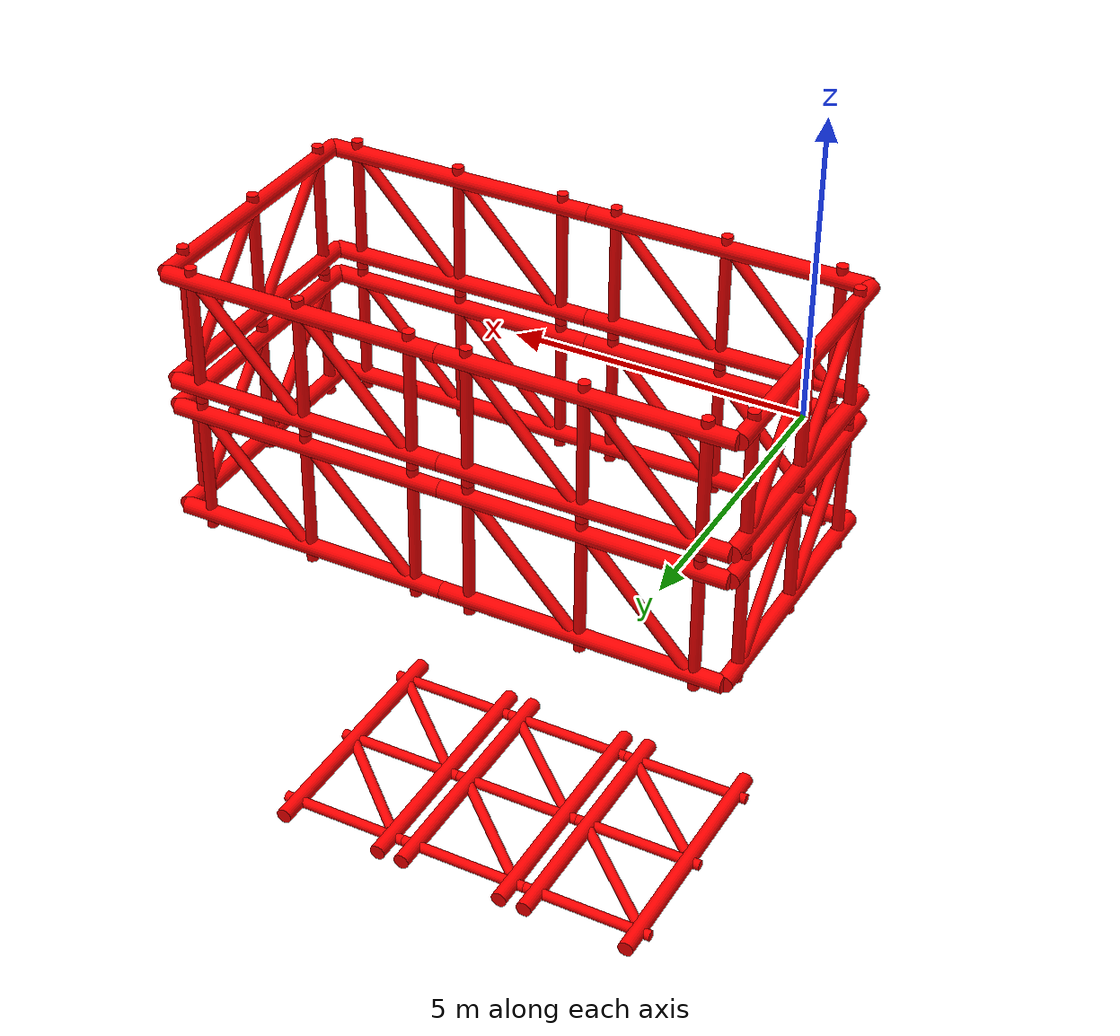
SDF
<sdf version="1.5">
 <model name="mega_structure">
  <static>true</static>
  <pose>5 0 0 0 0 0</pose>
  <link name="simple_structure::structure_body_01">
   <visual name="visual01">
    <geometry><cylinder><length>2.5</length><radius>0.1</radius></cylinder></geometry>
    <material><ambient>1 0 0 1</ambient><diffuse>1 0 0 1</diffuse><specular>0 0 0 0</specular></material>
   </visual>
   <collision name="collision01">
    <geometry><cylinder><length>2.5</length><radius>0.1</radius></cylinder></geometry>
   </collision>
   <visual name="visual02">
    <pose>0 -2 0 0 -0 0</pose>
    <geometry><cylinder><length>2.5</length><radius>0.1</radius></cylinder></geometry>
    <material><ambient>1 0 0 1</ambient><diffuse>1 0 0 1</diffuse><specular>0 0 0 0</specular></material>
   </visual>
   <collision name="collision02">
    <pose>0 -2 0 0 -0 0</pose>
    <geometry><cylinder><length>2.5</length><radius>0.1</radius></cylinder></geometry>
   </collision>
   <visual name="visual03">
    <pose>0 2 0 0 -0 0</pose>
    <geometry><cylinder><length>2.5</length><radius>0.1</radius></cylinder></geometry>
    <material><ambient>1 0 0 1</ambient><diffuse>1 0 0 1</diffuse><specular>0 0 0 0</specular></material>
   </visual>
   <collision name="collision03">
    <pose>0 2 0 0 -0 0</pose>
    <geometry><cylinder><length>2.5</length><radius>0.1</radius></cylinder></geometry>
   </collision>
   <visual name="visual04">
    <pose>0 1 0 0.75 -0 0</pose>
    <geometry><cylinder><length>2.5</length><radius>0.1</radius></cylinder></geometry>
    <material><ambient>1 0 0 1</ambient><diffuse>1 0 0 1</diffuse><specular>0 0 0 0</specular></material>
   </visual>
   <collision name="collision04">
    <pose>0 1 0 0.75 -0 0</pose>
    <geometry><cylinder><length>2.5</length><radius>0.1</radius></cylinder></geometry>
   </collision>
   <visual name="visual05">
    <pose>0 -1 0 0.75 -0 0</pose>
    <geometry><cylinder><length>2.5</length><radius>0.1</radius></cylinder></geometry>
    <material><ambient>1 0 0 1</ambient><diffuse>1 0 0 1</diffuse><specular>0 0 0 0</specular></material>
   </visual>
   <collision name="collision05">
    <pose>0 -1 0 0.75 -0 0</pose>
    <geometry><cylinder><length>2.5</length><radius>0.1</radius></cylinder></geometry>
   </collision>
   <visual name="visual06">
    <pose>0 0 1 1.5707 -0 0</pose>
    <geometry><cylinder><length>5</length><radius>0.15</radius></cylinder></geometry>
    <material><ambient>1 0 0 1</ambient><diffuse>1 0 0 1</diffuse><specular>0 0 0 0</specular></material>
   </visual>
   <collision name="collision06">
    <pose>0 0 1 1.5707 -0 0</pose>
    <geometry><cylinder><length>2.5</length><radius>0.1</radius></cylinder></geometry>
   </collision>
   <visual name="visual07">
    <pose>0 0 -1 1.5707 -0 0</pose>
    <geometry><cylinder><length>5</length><radius>0.15</radius></cylinder></geometry>
    <material><ambient>1 0 0 1</ambient><diffuse>1 0 0 1</diffuse><specular>0 0 0 0</specular></material>
   </visual>
   <collision name="collision07">
    <pose>0 0 -1 1.5707 -0 0</pose>
    <geometry><cylinder><length>2.5</length><radius>0.1</radius></cylinder></geometry>
   </collision>
   <velocity_decay><linear>0</linear><angular>0</angular></velocity_decay>
   <pose>5 0 0 0 -0 0</pose>
  </link>
  <static>true</static>
  <link name="simple_structure::structure_body_02">
   <visual name="visual01">
    <geometry><cylinder><length>2.5</length><radius>0.1</radius></cylinder></geometry>
    <material><ambient>1 0 0 1</ambient><diffuse>1 0 0 1</diffuse><specular>0 0 0 0</specular></material>
   </visual>
   <collision name="collision01">
    <geometry><cylinder><length>2.5</length><radius>0.1</radius></cylinder></geometry>
   </collision>
   <visual name="visual02">
    <pose>0 -2 0 0 -0 0</pose>
    <geometry><cylinder><length>2.5</length><radius>0.1</radius></cylinder></geometry>
    <material><ambient>1 0 0 1</ambient><diffuse>1 0 0 1</diffuse><specular>0 0 0 0</specular></material>
   </visual>
   <collision name="collision02">
    <pose>0 -2 0 0 -0 0</pose>
    <geometry><cylinder><length>2.5</length><radius>0.1</radius></cylinder></geometry>
   </collision>
   <visual name="visual03">
    <pose>0 2 0 0 -0 0</pose>
    <geometry><cylinder><length>2.5</length><radius>0.1</radius></cylinder></geometry>
    <material><ambient>1 0 0 1</ambient><diffuse>1 0 0 1</diffuse><specular>0 0 0 0</specular></material>
   </visual>
   <collision name="collision03">
    <pose>0 2 0 0 -0 0</pose>
    <geometry><cylinder><length>2.5</length><radius>0.1</radius></cylinder></geometry>
   </collision>
   <visual name="visual04">
    <pose>0 1 0 0.75 -0 0</pose>
    <geometry><cylinder><length>2.5</length><radius>0.1</radius></cylinder></geometry>
    <material><ambient>1 0 0 1</ambient><diffuse>1 0 0 1</diffuse><specular>0 0 0 0</specular></material>
   </visual>
   <collision name="collision04">
    <pose>0 1 0 0.75 -0 0</pose>
    <geometry><cylinder><length>2.5</length><radius>0.1</radius></cylinder></geometry>
   </collision>
   <visual name="visual05">
    <pose>0 -1 0 0.75 -0 0</pose>
    <geometry><cylinder><length>2.5</length><radius>0.1</radius></cylinder></geometry>
    <material><ambient>1 0 0 1</ambient><diffuse>1 0 0 1</diffuse><specular>0 0 0 0</specular></material>
   </visual>
   <collision name="collision05">
    <pose>0 -1 0 0.75 -0 0</pose>
    <geometry><cylinder><length>2.5</length><radius>0.1</radius></cylinder></geometry>
   </collision>
   <visual name="visual06">
    <pose>0 0 1 1.5707 -0 0</pose>
    <geometry><cylinder><length>5</length><radius>0.15</radius></cylinder></geometry>
    <material><ambient>1 0 0 1</ambient><diffuse>1 0 0 1</diffuse><specular>0 0 0 0</specular></material>
   </visual>
   <collision name="collision06">
    <pose>0 0 1 1.5707 -0 0</pose>
    <geometry><cylinder><length>2.5</length><radius>0.1</radius></cylinder></geometry>
   </collision>
   <visual name="visual07">
    <pose>0 0 -1 1.5707 -0 0</pose>
    <geometry><cylinder><length>5</length><radius>0.15</radius></cylinder></geometry>
    <material><ambient>1 0 0 1</ambient><diffuse>1 0 0 1</diffuse><specular>0 0 0 0</specular></material>
   </visual>
   <collision name="collision07">
    <pose>0 0 -1 1.5707 -0 0</pose>
    <geometry><cylinder><length>2.5</length><radius>0.1</radius></cylinder></geometry>
   </collision>
   <velocity_decay><linear>0</linear><angular>0</angular></velocity_decay>
   <pose>-5 0 0 0 -0 0</pose>
  </link>
  <static>true</static>
  <link name="simple_structure::structure_body_03">
   <visual name="visual01">
    <geometry><cylinder><length>2.5</length><radius>0.1</radius></cylinder></geometry>
    <material><ambient>1 0 0 1</ambient><diffuse>1 0 0 1</diffuse><specular>0 0 0 0</specular></material>
   </visual>
   <collision name="collision01">
    <geometry><cylinder><length>2.5</length><radius>0.1</radius></cylinder></geometry>
   </collision>
   <visual name="visual02">
    <pose>0 -2 0 0 -0 0</pose>
    <geometry><cylinder><length>2.5</length><radius>0.1</radius></cylinder></geometry>
    <material><ambient>1 0 0 1</ambient><diffuse>1 0 0 1</diffuse><specular>0 0 0 0</specular></material>
   </visual>
   <collision name="collision02">
    <pose>0 -2 0 0 -0 0</pose>
    <geometry><cylinder><length>2.5</length><radius>0.1</radius></cylinder></geometry>
   </collision>
   <visual name="visual03">
    <pose>0 2 0 0 -0 0</pose>
    <geometry><cylinder><length>2.5</length><radius>0.1</radius></cylinder></geometry>
    <material><ambient>1 0 0 1</ambient><diffuse>1 0 0 1</diffuse><specular>0 0 0 0</specular></material>
   </visual>
   <collision name="collision03">
    <pose>0 2 0 0 -0 0</pose>
    <geometry><cylinder><length>2.5</length><radius>0.1</radius></cylinder></geometry>
   </collision>
   <visual name="visual04">
    <pose>0 1 0 0.75 -0 0</pose>
    <geometry><cylinder><length>2.5</length><radius>0.1</radius></cylinder></geometry>
    <material><ambient>1 0 0 1</ambient><diffuse>1 0 0 1</diffuse><specular>0 0 0 0</specular></material>
   </visual>
   <collision name="collision04">
    <pose>0 1 0 0.75 -0 0</pose>
    <geometry><cylinder><length>2.5</length><radius>0.1</radius></cylinder></geometry>
   </collision>
   <visual name="visual05">
    <pose>0 -1 0 0.75 -0 0</pose>
    <geometry><cylinder><length>2.5</length><radius>0.1</radius></cylinder></geometry>
    <material><ambient>1 0 0 1</ambient><diffuse>1 0 0 1</diffuse><specular>0 0 0 0</specular></material>
   </visual>
   <collision name="collision05">
    <pose>0 -1 0 0.75 -0 0</pose>
    <geometry><cylinder><length>2.5</length><radius>0.1</radius></cylinder></geometry>
   </collision>
   <visual name="visual06">
    <pose>0 0 1 1.5707 -0 0</pose>
    <geometry><cylinder><length>5</length><radius>0.15</radius></cylinder></geometry>
    <material><ambient>1 0 0 1</ambient><diffuse>1 0 0 1</diffuse><specular>0 0 0 0</specular></material>
   </visual>
   <collision name="collision06">
    <pose>0 0 1 1.5707 -0 0</pose>
    <geometry><cylinder><length>2.5</length><radius>0.1</radius></cylinder></geometry>
   </collision>
   <visual name="visual07">
    <pose>0 0 -1 1.5707 -0 0</pose>
    <geometry><cylinder><length>5</length><radius>0.15</radius></cylinder></geometry>
    <material><ambient>1 0 0 1</ambient><diffuse>1 0 0 1</diffuse><specular>0 0 0 0</specular></material>
   </visual>
   <collision name="collision07">
    <pose>0 0 -1 1.5707 -0 0</pose>
    <geometry><cylinder><length>2.5</length><radius>0.1</radius></cylinder></geometry>
   </collision>
   <velocity_decay><linear>0</linear><angular>0</angular></velocity_decay>
   <pose>2.5 2.5 0 0 -0 1.5707</pose>
  </link>
  <static>true</static>
  <link name="simple_structure::structure_body_04">
   <visual name="visual01">
    <geometry><cylinder><length>2.5</length><radius>0.1</radius></cylinder></geometry>
    <material><ambient>1 0 0 1</ambient><diffuse>1 0 0 1</diffuse><specular>0 0 0 0</specular></material>
   </visual>
   <collision name="collision01">
    <geometry><cylinder><length>2.5</length><radius>0.1</radius></cylinder></geometry>
   </collision>
   <visual name="visual02">
    <pose>0 -2 0 0 -0 0</pose>
    <geometry><cylinder><length>2.5</length><radius>0.1</radius></cylinder></geometry>
    <material><ambient>1 0 0 1</ambient><diffuse>1 0 0 1</diffuse><specular>0 0 0 0</specular></material>
   </visual>
   <collision name="collision02">
    <pose>0 -2 0 0 -0 0</pose>
    <geometry><cylinder><length>2.5</length><radius>0.1</radius></cylinder></geometry>
   </collision>
   <visual name="visual03">
    <pose>0 2 0 0 -0 0</pose>
    <geometry><cylinder><length>2.5</length><radius>0.1</radius></cylinder></geometry>
    <material><ambient>1 0 0 1</ambient><diffuse>1 0 0 1</diffuse><specular>0 0 0 0</specular></material>
   </visual>
   <collision name="collision03">
    <pose>0 2 0 0 -0 0</pose>
    <geometry><cylinder><length>2.5</length><radius>0.1</radius></cylinder></geometry>
   </collision>
   <visual name="visual04">
    <pose>0 1 0 0.75 -0 0</pose>
    <geometry><cylinder><length>2.5</length><radius>0.1</radius></cylinder></geometry>
    <material><ambient>1 0 0 1</ambient><diffuse>1 0 0 1</diffuse><specular>0 0 0 0</specular></material>
   </visual>
   <collision name="collision04">
    <pose>0 1 0 0.75 -0 0</pose>
    <geometry><cylinder><length>2.5</length><radius>0.1</radius></cylinder></geometry>
   </collision>
   <visual name="visual05">
    <pose>0 -1 0 0.75 -0 0</pose>
    <geometry><cylinder><length>2.5</length><radius>0.1</radius></cylinder></geometry>
    <material><ambient>1 0 0 1</ambient><diffuse>1 0 0 1</diffuse><specular>0 0 0 0</specular></material>
   </visual>
   <collision name="collision05">
    <pose>0 -1 0 0.75 -0 0</pose>
    <geometry><cylinder><length>2.5</length><radius>0.1</radius></cylinder></geometry>
   </collision>
   <visual name="visual06">
    <pose>0 0 1 1.5707 -0 0</pose>
    <geometry><cylinder><length>5</length><radius>0.15</radius></cylinder></geometry>
    <material><ambient>1 0 0 1</ambient><diffuse>1 0 0 1</diffuse><specular>0 0 0 0</specular></material>
   </visual>
   <collision name="collision06">
    <pose>0 0 1 1.5707 -0 0</pose>
    <geometry><cylinder><length>2.5</length><radius>0.1</radius></cylinder></geometry>
   </collision>
   <visual name="visual07">
    <pose>0 0 -1 1.5707 -0 0</pose>
    <geometry><cylinder><length>5</length><radius>0.15</radius></cylinder></geometry>
    <material><ambient>1 0 0 1</ambient><diffuse>1 0 0 1</diffuse><specular>0 0 0 0</specular></material>
   </visual>
   <collision name="collision07">
    <pose>0 0 -1 1.5707 -0 0</pose>
    <geometry><cylinder><length>2.5</length><radius>0.1</radius></cylinder></geometry>
   </collision>
   <velocity_decay><linear>0</linear><angular>0</angular></velocity_decay>
   <pose>-2.5 2.5 0 0 -0 1.5707</pose>
  </link>
  <static>true</static>
  <link name="simple_structure::structure_body_05">
   <visual name="visual01">
    <geometry><cylinder><length>2.5</length><radius>0.1</radius></cylinder></geometry>
    <material><ambient>1 0 0 1</ambient><diffuse>1 0 0 1</diffuse><specular>0 0 0 0</specular></material>
   </visual>
   <collision name="collision01">
    <geometry><cylinder><length>2.5</length><radius>0.1</radius></cylinder></geometry>
   </collision>
   <visual name="visual02">
    <pose>0 -2 0 0 -0 0</pose>
    <geometry><cylinder><length>2.5</length><radius>0.1</radius></cylinder></geometry>
    <material><ambient>1 0 0 1</ambient><diffuse>1 0 0 1</diffuse><specular>0 0 0 0</specular></material>
   </visual>
   <collision name="collision02">
    <pose>0 -2 0 0 -0 0</pose>
    <geometry><cylinder><length>2.5</length><radius>0.1</radius></cylinder></geometry>
   </collision>
   <visual name="visual03">
    <pose>0 2 0 0 -0 0</pose>
    <geometry><cylinder><length>2.5</length><radius>0.1</radius></cylinder></geometry>
    <material><ambient>1 0 0 1</ambient><diffuse>1 0 0 1</diffuse><specular>0 0 0 0</specular></material>
   </visual>
   <collision name="collision03">
    <pose>0 2 0 0 -0 0</pose>
    <geometry><cylinder><length>2.5</length><radius>0.1</radius></cylinder></geometry>
   </collision>
   <visual name="visual04">
    <pose>0 1 0 0.75 -0 0</pose>
    <geometry><cylinder><length>2.5</length><radius>0.1</radius></cylinder></geometry>
    <material><ambient>1 0 0 1</ambient><diffuse>1 0 0 1</diffuse><specular>0 0 0 0</specular></material>
   </visual>
   <collision name="collision04">
    <pose>0 1 0 0.75 -0 0</pose>
    <geometry><cylinder><length>2.5</length><radius>0.1</radius></cylinder></geometry>
   </collision>
   <visual name="visual05">
    <pose>0 -1 0 0.75 -0 0</pose>
    <geometry><cylinder><length>2.5</length><radius>0.1</radius></cylinder></geometry>
    <material><ambient>1 0 0 1</ambient><diffuse>1 0 0 1</diffuse><specular>0 0 0 0</specular></material>
   </visual>
   <collision name="collision05">
    <pose>0 -1 0 0.75 -0 0</pose>
    <geometry><cylinder><length>2.5</length><radius>0.1</radius></cylinder></geometry>
   </collision>
   <visual name="visual06">
    <pose>0 0 1 1.5707 -0 0</pose>
    <geometry><cylinder><length>5</length><radius>0.15</radius></cylinder></geometry>
    <material><ambient>1 0 0 1</ambient><diffuse>1 0 0 1</diffuse><specular>0 0 0 0</specular></material>
   </visual>
   <collision name="collision06">
    <pose>0 0 1 1.5707 -0 0</pose>
    <geometry><cylinder><length>2.5</length><radius>0.1</radius></cylinder></geometry>
   </collision>
   <visual name="visual07">
    <pose>0 0 -1 1.5707 -0 0</pose>
    <geometry><cylinder><length>5</length><radius>0.15</radius></cylinder></geometry>
    <material><ambient>1 0 0 1</ambient><diffuse>1 0 0 1</diffuse><specular>0 0 0 0</specular></material>
   </visual>
   <collision name="collision07">
    <pose>0 0 -1 1.5707 -0 0</pose>
    <geometry><cylinder><length>2.5</length><radius>0.1</radius></cylinder></geometry>
   </collision>
   <velocity_decay><linear>0</linear><angular>0</angular></velocity_decay>
   <pose>2.5 -2.5 0 0 -0 1.5707</pose>
  </link>
  <static>true</static>
  <link name="simple_structure::structure_body_06">
   <visual name="visual01">
    <geometry><cylinder><length>2.5</length><radius>0.1</radius></cylinder></geometry>
    <material><ambient>1 0 0 1</ambient><diffuse>1 0 0 1</diffuse><specular>0 0 0 0</specular></material>
   </visual>
   <collision name="collision01">
    <geometry><cylinder><length>2.5</length><radius>0.1</radius></cylinder></geometry>
   </collision>
   <visual name="visual02">
    <pose>0 -2 0 0 -0 0</pose>
    <geometry><cylinder><length>2.5</length><radius>0.1</radius></cylinder></geometry>
    <material><ambient>1 0 0 1</ambient><diffuse>1 0 0 1</diffuse><specular>0 0 0 0</specular></material>
   </visual>
   <collision name="collision02">
    <pose>0 -2 0 0 -0 0</pose>
    <geometry><cylinder><length>2.5</length><radius>0.1</radius></cylinder></geometry>
   </collision>
   <visual name="visual03">
    <pose>0 2 0 0 -0 0</pose>
    <geometry><cylinder><length>2.5</length><radius>0.1</radius></cylinder></geometry>
    <material><ambient>1 0 0 1</ambient><diffuse>1 0 0 1</diffuse><specular>0 0 0 0</specular></material>
   </visual>
   <collision name="collision03">
    <pose>0 2 0 0 -0 0</pose>
    <geometry><cylinder><length>2.5</length><radius>0.1</radius></cylinder></geometry>
   </collision>
   <visual name="visual04">
    <pose>0 1 0 0.75 -0 0</pose>
    <geometry><cylinder><length>2.5</length><radius>0.1</radius></cylinder></geometry>
    <material><ambient>1 0 0 1</ambient><diffuse>1 0 0 1</diffuse><specular>0 0 0 0</specular></material>
   </visual>
   <collision name="collision04">
    <pose>0 1 0 0.75 -0 0</pose>
    <geometry><cylinder><length>2.5</length><radius>0.1</radius></cylinder></geometry>
   </collision>
   <visual name="visual05">
    <pose>0 -1 0 0.75 -0 0</pose>
    <geometry><cylinder><length>2.5</length><radius>0.1</radius></cylinder></geometry>
    <material><ambient>1 0 0 1</ambient><diffuse>1 0 0 1</diffuse><specular>0 0 0 0</specular></material>
   </visual>
   <collision name="collision05">
    <pose>0 -1 0 0.75 -0 0</pose>
    <geometry><cylinder><length>2.5</length><radius>0.1</radius></cylinder></geometry>
   </collision>
   <visual name="visual06">
    <pose>0 0 1 1.5707 -0 0</pose>
    <geometry><cylinder><length>5</length><radius>0.15</radius></cylinder></geometry>
    <material><ambient>1 0 0 1</ambient><diffuse>1 0 0 1</diffuse><specular>0 0 0 0</specular></material>
   </visual>
   <collision name="collision06">
    <pose>0 0 1 1.5707 -0 0</pose>
    <geometry><cylinder><length>2.5</length><radius>0.1</radius></cylinder></geometry>
   </collision>
   <visual name="visual07">
    <pose>0 0 -1 1.5707 -0 0</pose>
    <geometry><cylinder><length>5</length><radius>0.15</radius></cylinder></geometry>
    <material><ambient>1 0 0 1</ambient><diffuse>1 0 0 1</diffuse><specular>0 0 0 0</specular></material>
   </visual>
   <collision name="collision07">
    <pose>0 0 -1 1.5707 -0 0</pose>
    <geometry><cylinder><length>2.5</length><radius>0.1</radius></cylinder></geometry>
   </collision>
   <velocity_decay><linear>0</linear><angular>0</angular></velocity_decay>
   <pose>-2.5 -2.5 0 0 -0 1.5707</pose>
  </link>
  <static>true</static>
  <link name="simple_structure::structure_body_07">
   <visual name="visual01">
    <geometry><cylinder><length>2.5</length><radius>0.1</radius></cylinder></geometry>
    <material><ambient>1 0 0 1</ambient><diffuse>1 0 0 1</diffuse><specular>0 0 0 0</specular></material>
   </visual>
   <collision name="collision01">
    <geometry><cylinder><length>2.5</length><radius>0.1</radius></cylinder></geometry>
   </collision>
   <visual name="visual02">
    <pose>0 -2 0 0 -0 0</pose>
    <geometry><cylinder><length>2.5</length><radius>0.1</radius></cylinder></geometry>
    <material><ambient>1 0 0 1</ambient><diffuse>1 0 0 1</diffuse><specular>0 0 0 0</specular></material>
   </visual>
   <collision name="collision02">
    <pose>0 -2 0 0 -0 0</pose>
    <geometry><cylinder><length>2.5</length><radius>0.1</radius></cylinder></geometry>
   </collision>
   <visual name="visual03">
    <pose>0 2 0 0 -0 0</pose>
    <geometry><cylinder><length>2.5</length><radius>0.1</radius></cylinder></geometry>
    <material><ambient>1 0 0 1</ambient><diffuse>1 0 0 1</diffuse><specular>0 0 0 0</specular></material>
   </visual>
   <collision name="collision03">
    <pose>0 2 0 0 -0 0</pose>
    <geometry><cylinder><length>2.5</length><radius>0.1</radius></cylinder></geometry>
   </collision>
   <visual name="visual04">
    <pose>0 1 0 0.75 -0 0</pose>
    <geometry><cylinder><length>2.5</length><radius>0.1</radius></cylinder></geometry>
    <material><ambient>1 0 0 1</ambient><diffuse>1 0 0 1</diffuse><specular>0 0 0 0</specular></material>
   </visual>
   <collision name="collision04">
    <pose>0 1 0 0.75 -0 0</pose>
    <geometry><cylinder><length>2.5</length><radius>0.1</radius></cylinder></geometry>
   </collision>
   <visual name="visual05">
    <pose>0 -1 0 0.75 -0 0</pose>
    <geometry><cylinder><length>2.5</length><radius>0.1</radius></cylinder></geometry>
    <material><ambient>1 0 0 1</ambient><diffuse>1 0 0 1</diffuse><specular>0 0 0 0</specular></material>
   </visual>
   <collision name="collision05">
    <pose>0 -1 0 0.75 -0 0</pose>
    <geometry><cylinder><length>2.5</length><radius>0.1</radius></cylinder></geometry>
   </collision>
   <visual name="visual06">
    <pose>0 0 1 1.5707 -0 0</pose>
    <geometry><cylinder><length>5</length><radius>0.15</radius></cylinder></geometry>
    <material><ambient>1 0 0 1</ambient><diffuse>1 0 0 1</diffuse><specular>0 0 0 0</specular></material>
   </visual>
   <collision name="collision06">
    <pose>0 0 1 1.5707 -0 0</pose>
    <geometry><cylinder><length>2.5</length><radius>0.1</radius></cylinder></geometry>
   </collision>
   <visual name="visual07">
    <pose>0 0 -1 1.5707 -0 0</pose>
    <geometry><cylinder><length>5</length><radius>0.15</radius></cylinder></geometry>
    <material><ambient>1 0 0 1</ambient><diffuse>1 0 0 1</diffuse><specular>0 0 0 0</specular></material>
   </visual>
   <collision name="collision07">
    <pose>0 0 -1 1.5707 -0 0</pose>
    <geometry><cylinder><length>2.5</length><radius>0.1</radius></cylinder></geometry>
   </collision>
   <velocity_decay><linear>0</linear><angular>0</angular></velocity_decay>
   <pose>5 0 -2.5 0 -0 0</pose>
  </link>
  <static>true</static>
  <link name="simple_structure::structure_body_08">
   <visual name="visual01">
    <geometry><cylinder><length>2.5</length><radius>0.1</radius></cylinder></geometry>
    <material><ambient>1 0 0 1</ambient><diffuse>1 0 0 1</diffuse><specular>0 0 0 0</specular></material>
   </visual>
   <collision name="collision01">
    <geometry><cylinder><length>2.5</length><radius>0.1</radius></cylinder></geometry>
   </collision>
   <visual name="visual02">
    <pose>0 -2 0 0 -0 0</pose>
    <geometry><cylinder><length>2.5</length><radius>0.1</radius></cylinder></geometry>
    <material><ambient>1 0 0 1</ambient><diffuse>1 0 0 1</diffuse><specular>0 0 0 0</specular></material>
   </visual>
   <collision name="collision02">
    <pose>0 -2 0 0 -0 0</pose>
    <geometry><cylinder><length>2.5</length><radius>0.1</radius></cylinder></geometry>
   </collision>
   <visual name="visual03">
    <pose>0 2 0 0 -0 0</pose>
    <geometry><cylinder><length>2.5</length><radius>0.1</radius></cylinder></geometry>
    <material><ambient>1 0 0 1</ambient><diffuse>1 0 0 1</diffuse><specular>0 0 0 0</specular></material>
   </visual>
   <collision name="collision03">
    <pose>0 2 0 0 -0 0</pose>
    <geometry><cylinder><length>2.5</length><radius>0.1</radius></cylinder></geometry>
   </collision>
   <visual name="visual04">
    <pose>0 1 0 0.75 -0 0</pose>
    <geometry><cylinder><length>2.5</length><radius>0.1</radius></cylinder></geometry>
    <material><ambient>1 0 0 1</ambient><diffuse>1 0 0 1</diffuse><specular>0 0 0 0</specular></material>
   </visual>
   <collision name="collision04">
    <pose>0 1 0 0.75 -0 0</pose>
    <geometry><cylinder><length>2.5</length><radius>0.1</radius></cylinder></geometry>
   </collision>
   <visual name="visual05">
    <pose>0 -1 0 0.75 -0 0</pose>
    <geometry><cylinder><length>2.5</length><radius>0.1</radius></cylinder></geometry>
    <material><ambient>1 0 0 1</ambient><diffuse>1 0 0 1</diffuse><specular>0 0 0 0</specular></material>
   </visual>
   <collision name="collision05">
    <pose>0 -1 0 0.75 -0 0</pose>
    <geometry><cylinder><length>2.5</length><radius>0.1</radius></cylinder></geometry>
   </collision>
   <visual name="visual06">
    <pose>0 0 1 1.5707 -0 0</pose>
    <geometry><cylinder><length>5</length><radius>0.15</radius></cylinder></geometry>
    <material><ambient>1 0 0 1</ambient><diffuse>1 0 0 1</diffuse><specular>0 0 0 0</specular></material>
   </visual>
   <collision name="collision06">
    <pose>0 0 1 1.5707 -0 0</pose>
    <geometry><cylinder><length>2.5</length><radius>0.1</radius></cylinder></geometry>
   </collision>
   <visual name="visual07">
    <pose>0 0 -1 1.5707 -0 0</pose>
    <geometry><cylinder><length>5</length><radius>0.15</radius></cylinder></geometry>
    <material><ambient>1 0 0 1</ambient><diffuse>1 0 0 1</diffuse><specular>0 0 0 0</specular></material>
   </visual>
   <collision name="collision07">
    <pose>0 0 -1 1.5707 -0 0</pose>
    <geometry><cylinder><length>2.5</length><radius>0.1</radius></cylinder></geometry>
   </collision>
   <velocity_decay><linear>0</linear><angular>0</angular></velocity_decay>
   <pose>-5 0 -2.5 0 -0 0</pose>
  </link>
  <static>true</static>
  <link name="simple_structure::structure_body_09">
   <visual name="visual01">
    <geometry><cylinder><length>2.5</length><radius>0.1</radius></cylinder></geometry>
    <material><ambient>1 0 0 1</ambient><diffuse>1 0 0 1</diffuse><specular>0 0 0 0</specular></material>
   </visual>
   <collision name="collision01">
    <geometry><cylinder><length>2.5</length><radius>0.1</radius></cylinder></geometry>
   </collision>
   <visual name="visual02">
    <pose>0 -2 0 0 -0 0</pose>
    <geometry><cylinder><length>2.5</length><radius>0.1</radius></cylinder></geometry>
    <material><ambient>1 0 0 1</ambient><diffuse>1 0 0 1</diffuse><specular>0 0 0 0</specular></material>
   </visual>
   <collision name="collision02">
    <pose>0 -2 0 0 -0 0</pose>
    <geometry><cylinder><length>2.5</length><radius>0.1</radius></cylinder></geometry>
   </collision>
   <visual name="visual03">
    <pose>0 2 0 0 -0 0</pose>
    <geometry><cylinder><length>2.5</length><radius>0.1</radius></cylinder></geometry>
    <material><ambient>1 0 0 1</ambient><diffuse>1 0 0 1</diffuse><specular>0 0 0 0</specular></material>
   </visual>
   <collision name="collision03">
    <pose>0 2 0 0 -0 0</pose>
    <geometry><cylinder><length>2.5</length><radius>0.1</radius></cylinder></geometry>
   </collision>
   <visual name="visual04">
    <pose>0 1 0 0.75 -0 0</pose>
    <geometry><cylinder><length>2.5</length><radius>0.1</radius></cylinder></geometry>
    <material><ambient>1 0 0 1</ambient><diffuse>1 0 0 1</diffuse><specular>0 0 0 0</specular></material>
   </visual>
   <collision name="collision04">
    <pose>0 1 0 0.75 -0 0</pose>
    <geometry><cylinder><length>2.5</length><radius>0.1</radius></cylinder></geometry>
   </collision>
   <visual name="visual05">
    <pose>0 -1 0 0.75 -0 0</pose>
    <geometry><cylinder><length>2.5</length><radius>0.1</radius></cylinder></geometry>
    <material><ambient>1 0 0 1</ambient><diffuse>1 0 0 1</diffuse><specular>0 0 0 0</specular></material>
   </visual>
   <collision name="collision05">
    <pose>0 -1 0 0.75 -0 0</pose>
    <geometry><cylinder><length>2.5</length><radius>0.1</radius></cylinder></geometry>
   </collision>
   <visual name="visual06">
    <pose>0 0 1 1.5707 -0 0</pose>
    <geometry><cylinder><length>5</length><radius>0.15</radius></cylinder></geometry>
    <material><ambient>1 0 0 1</ambient><diffuse>1 0 0 1</diffuse><specular>0 0 0 0</specular></material>
   </visual>
   <collision name="collision06">
    <pose>0 0 1 1.5707 -0 0</pose>
    <geometry><cylinder><length>2.5</length><radius>0.1</radius></cylinder></geometry>
   </collision>
   <visual name="visual07">
    <pose>0 0 -1 1.5707 -0 0</pose>
    <geometry><cylinder><length>5</length><radius>0.15</radius></cylinder></geometry>
    <material><ambient>1 0 0 1</ambient><diffuse>1 0 0 1</diffuse><specular>0 0 0 0</specular></material>
   </visual>
   <collision name="collision07">
    <pose>0 0 -1 1.5707 -0 0</pose>
    <geometry><cylinder><length>2.5</length><radius>0.1</radius></cylinder></geometry>
   </collision>
   <velocity_decay><linear>0</linear><angular>0</angular></velocity_decay>
   <pose>2.5 2.5 -2.5 0 -0 1.5707</pose>
  </link>
  <static>true</static>
  <link name="simple_structure::structure_body_10">
   <visual name="visual01">
    <geometry><cylinder><length>2.5</length><radius>0.1</radius></cylinder></geometry>
    <material><ambient>1 0 0 1</ambient><diffuse>1 0 0 1</diffuse><specular>0 0 0 0</specular></material>
   </visual>
   <collision name="collision01">
    <geometry><cylinder><length>2.5</length><radius>0.1</radius></cylinder></geometry>
   </collision>
   <visual name="visual02">
    <pose>0 -2 0 0 -0 0</pose>
    <geometry><cylinder><length>2.5</length><radius>0.1</radius></cylinder></geometry>
    <material><ambient>1 0 0 1</ambient><diffuse>1 0 0 1</diffuse><specular>0 0 0 0</specular></material>
   </visual>
   <collision name="collision02">
    <pose>0 -2 0 0 -0 0</pose>
    <geometry><cylinder><length>2.5</length><radius>0.1</radius></cylinder></geometry>
   </collision>
   <visual name="visual03">
    <pose>0 2 0 0 -0 0</pose>
    <geometry><cylinder><length>2.5</length><radius>0.1</radius></cylinder></geometry>
    <material><ambient>1 0 0 1</ambient><diffuse>1 0 0 1</diffuse><specular>0 0 0 0</specular></material>
   </visual>
   <collision name="collision03">
    <pose>0 2 0 0 -0 0</pose>
    <geometry><cylinder><length>2.5</length><radius>0.1</radius></cylinder></geometry>
   </collision>
   <visual name="visual04">
    <pose>0 1 0 0.75 -0 0</pose>
    <geometry><cylinder><length>2.5</length><radius>0.1</radius></cylinder></geometry>
    <material><ambient>1 0 0 1</ambient><diffuse>1 0 0 1</diffuse><specular>0 0 0 0</specular></material>
   </visual>
   <collision name="collision04">
    <pose>0 1 0 0.75 -0 0</pose>
    <geometry><cylinder><length>2.5</length><radius>0.1</radius></cylinder></geometry>
   </collision>
   <visual name="visual05">
    <pose>0 -1 0 0.75 -0 0</pose>
    <geometry><cylinder><length>2.5</length><radius>0.1</radius></cylinder></geometry>
    <material><ambient>1 0 0 1</ambient><diffuse>1 0 0 1</diffuse><specular>0 0 0 0</specular></material>
   </visual>
   <collision name="collision05">
    <pose>0 -1 0 0.75 -0 0</pose>
    <geometry><cylinder><length>2.5</length><radius>0.1</radius></cylinder></geometry>
   </collision>
   <visual name="visual06">
    <pose>0 0 1 1.5707 -0 0</pose>
    <geometry><cylinder><length>5</length><radius>0.15</radius></cylinder></geometry>
    <material><ambient>1 0 0 1</ambient><diffuse>1 0 0 1</diffuse><specular>0 0 0 0</specular></material>
   </visual>
   <collision name="collision06">
    <pose>0 0 1 1.5707 -0 0</pose>
    <geometry><cylinder><length>2.5</length><radius>0.1</radius></cylinder></geometry>
   </collision>
   <visual name="visual07">
    <pose>0 0 -1 1.5707 -0 0</pose>
    <geometry><cylinder><length>5</length><radius>0.15</radius></cylinder></geometry>
    <material><ambient>1 0 0 1</ambient><diffuse>1 0 0 1</diffuse><specular>0 0 0 0</specular></material>
   </visual>
   <collision name="collision07">
    <pose>0 0 -1 1.5707 -0 0</pose>
    <geometry><cylinder><length>2.5</length><radius>0.1</radius></cylinder></geometry>
   </collision>
   <velocity_decay><linear>0</linear><angular>0</angular></velocity_decay>
   <pose>-2.5 2.5 -2.5 0 -0 1.5707</pose>
  </link>
  <static>true</static>
  <link name="simple_structure::structure_body_11">
   <visual name="visual01">
    <geometry><cylinder><length>2.5</length><radius>0.1</radius></cylinder></geometry>
    <material><ambient>1 0 0 1</ambient><diffuse>1 0 0 1</diffuse><specular>0 0 0 0</specular></material>
   </visual>
   <collision name="collision01">
    <geometry><cylinder><length>2.5</length><radius>0.1</radius></cylinder></geometry>
   </collision>
   <visual name="visual02">
    <pose>0 -2 0 0 -0 0</pose>
    <geometry><cylinder><length>2.5</length><radius>0.1</radius></cylinder></geometry>
    <material><ambient>1 0 0 1</ambient><diffuse>1 0 0 1</diffuse><specular>0 0 0 0</specular></material>
   </visual>
   <collision name="collision02">
    <pose>0 -2 0 0 -0 0</pose>
    <geometry><cylinder><length>2.5</length><radius>0.1</radius></cylinder></geometry>
   </collision>
   <visual name="visual03">
    <pose>0 2 0 0 -0 0</pose>
    <geometry><cylinder><length>2.5</length><radius>0.1</radius></cylinder></geometry>
    <material><ambient>1 0 0 1</ambient><diffuse>1 0 0 1</diffuse><specular>0 0 0 0</specular></material>
   </visual>
   <collision name="collision03">
    <pose>0 2 0 0 -0 0</pose>
    <geometry><cylinder><length>2.5</length><radius>0.1</radius></cylinder></geometry>
   </collision>
   <visual name="visual04">
    <pose>0 1 0 0.75 -0 0</pose>
    <geometry><cylinder><length>2.5</length><radius>0.1</radius></cylinder></geometry>
    <material><ambient>1 0 0 1</ambient><diffuse>1 0 0 1</diffuse><specular>0 0 0 0</specular></material>
   </visual>
   <collision name="collision04">
    <pose>0 1 0 0.75 -0 0</pose>
    <geometry><cylinder><length>2.5</length><radius>0.1</radius></cylinder></geometry>
   </collision>
   <visual name="visual05">
    <pose>0 -1 0 0.75 -0 0</pose>
    <geometry><cylinder><length>2.5</length><radius>0.1</radius></cylinder></geometry>
    <material><ambient>1 0 0 1</ambient><diffuse>1 0 0 1</diffuse><specular>0 0 0 0</specular></material>
   </visual>
   <collision name="collision05">
    <pose>0 -1 0 0.75 -0 0</pose>
    <geometry><cylinder><length>2.5</length><radius>0.1</radius></cylinder></geometry>
   </collision>
   <visual name="visual06">
    <pose>0 0 1 1.5707 -0 0</pose>
    <geometry><cylinder><length>5</length><radius>0.15</radius></cylinder></geometry>
    <material><ambient>1 0 0 1</ambient><diffuse>1 0 0 1</diffuse><specular>0 0 0 0</specular></material>
   </visual>
   <collision name="collision06">
    <pose>0 0 1 1.5707 -0 0</pose>
    <geometry><cylinder><length>2.5</length><radius>0.1</radius></cylinder></geometry>
   </collision>
   <visual name="visual07">
    <pose>0 0 -1 1.5707 -0 0</pose>
    <geometry><cylinder><length>5</length><radius>0.15</radius></cylinder></geometry>
    <material><ambient>1 0 0 1</ambient><diffuse>1 0 0 1</diffuse><specular>0 0 0 0</specular></material>
   </visual>
   <collision name="collision07">
    <pose>0 0 -1 1.5707 -0 0</pose>
    <geometry><cylinder><length>2.5</length><radius>0.1</radius></cylinder></geometry>
   </collision>
   <velocity_decay><linear>0</linear><angular>0</angular></velocity_decay>
   <pose>2.5 -2.5 -2.5 0 -0 1.5707</pose>
  </link>
  <static>true</static>
  <link name="simple_structure::structure_body_12">
   <visual name="visual01">
    <geometry><cylinder><length>2.5</length><radius>0.1</radius></cylinder></geometry>
    <material><ambient>1 0 0 1</ambient><diffuse>1 0 0 1</diffuse><specular>0 0 0 0</specular></material>
   </visual>
   <collision name="collision01">
    <geometry><cylinder><length>2.5</length><radius>0.1</radius></cylinder></geometry>
   </collision>
   <visual name="visual02">
    <pose>0 -2 0 0 -0 0</pose>
    <geometry><cylinder><length>2.5</length><radius>0.1</radius></cylinder></geometry>
    <material><ambient>1 0 0 1</ambient><diffuse>1 0 0 1</diffuse><specular>0 0 0 0</specular></material>
   </visual>
   <collision name="collision02">
    <pose>0 -2 0 0 -0 0</pose>
    <geometry><cylinder><length>2.5</length><radius>0.1</radius></cylinder></geometry>
   </collision>
   <visual name="visual03">
    <pose>0 2 0 0 -0 0</pose>
    <geometry><cylinder><length>2.5</length><radius>0.1</radius></cylinder></geometry>
    <material><ambient>1 0 0 1</ambient><diffuse>1 0 0 1</diffuse><specular>0 0 0 0</specular></material>
   </visual>
   <collision name="collision03">
    <pose>0 2 0 0 -0 0</pose>
    <geometry><cylinder><length>2.5</length><radius>0.1</radius></cylinder></geometry>
   </collision>
   <visual name="visual04">
    <pose>0 1 0 0.75 -0 0</pose>
    <geometry><cylinder><length>2.5</length><radius>0.1</radius></cylinder></geometry>
    <material><ambient>1 0 0 1</ambient><diffuse>1 0 0 1</diffuse><specular>0 0 0 0</specular></material>
   </visual>
   <collision name="collision04">
    <pose>0 1 0 0.75 -0 0</pose>
    <geometry><cylinder><length>2.5</length><radius>0.1</radius></cylinder></geometry>
   </collision>
   <visual name="visual05">
    <pose>0 -1 0 0.75 -0 0</pose>
    <geometry><cylinder><length>2.5</length><radius>0.1</radius></cylinder></geometry>
    <material><ambient>1 0 0 1</ambient><diffuse>1 0 0 1</diffuse><specular>0 0 0 0</specular></material>
   </visual>
   <collision name="collision05">
    <pose>0 -1 0 0.75 -0 0</pose>
    <geometry><cylinder><length>2.5</length><radius>0.1</radius></cylinder></geometry>
   </collision>
   <visual name="visual06">
    <pose>0 0 1 1.5707 -0 0</pose>
    <geometry><cylinder><length>5</length><radius>0.15</radius></cylinder></geometry>
    <material><ambient>1 0 0 1</ambient><diffuse>1 0 0 1</diffuse><specular>0 0 0 0</specular></material>
   </visual>
   <collision name="collision06">
    <pose>0 0 1 1.5707 -0 0</pose>
    <geometry><cylinder><length>2.5</length><radius>0.1</radius></cylinder></geometry>
   </collision>
   <visual name="visual07">
    <pose>0 0 -1 1.5707 -0 0</pose>
    <geometry><cylinder><length>5</length><radius>0.15</radius></cylinder></geometry>
    <material><ambient>1 0 0 1</ambient><diffuse>1 0 0 1</diffuse><specular>0 0 0 0</specular></material>
   </visual>
   <collision name="collision07">
    <pose>0 0 -1 1.5707 -0 0</pose>
    <geometry><cylinder><length>2.5</length><radius>0.1</radius></cylinder></geometry>
   </collision>
   <velocity_decay><linear>0</linear><angular>0</angular></velocity_decay>
   <pose>-2.5 -2.5 -2.5 0 -0 1.5707</pose>
  </link>
  <static>true</static>
  <link name="simple_structure::structure_body_13">
   <visual name="visual01">
    <geometry><cylinder><length>2.5</length><radius>0.1</radius></cylinder></geometry>
    <material><ambient>1 0 0 1</ambient><diffuse>1 0 0 1</diffuse><specular>0 0 0 0</specular></material>
   </visual>
   <collision name="collision01">
    <geometry><cylinder><length>2.5</length><radius>0.1</radius></cylinder></geometry>
   </collision>
   <visual name="visual02">
    <pose>0 -2 0 0 -0 0</pose>
    <geometry><cylinder><length>2.5</length><radius>0.1</radius></cylinder></geometry>
    <material><ambient>1 0 0 1</ambient><diffuse>1 0 0 1</diffuse><specular>0 0 0 0</specular></material>
   </visual>
   <collision name="collision02">
    <pose>0 -2 0 0 -0 0</pose>
    <geometry><cylinder><length>2.5</length><radius>0.1</radius></cylinder></geometry>
   </collision>
   <visual name="visual03">
    <pose>0 2 0 0 -0 0</pose>
    <geometry><cylinder><length>2.5</length><radius>0.1</radius></cylinder></geometry>
    <material><ambient>1 0 0 1</ambient><diffuse>1 0 0 1</diffuse><specular>0 0 0 0</specular></material>
   </visual>
   <collision name="collision03">
    <pose>0 2 0 0 -0 0</pose>
    <geometry><cylinder><length>2.5</length><radius>0.1</radius></cylinder></geometry>
   </collision>
   <visual name="visual04">
    <pose>0 1 0 0.75 -0 0</pose>
    <geometry><cylinder><length>2.5</length><radius>0.1</radius></cylinder></geometry>
    <material><ambient>1 0 0 1</ambient><diffuse>1 0 0 1</diffuse><specular>0 0 0 0</specular></material>
   </visual>
   <collision name="collision04">
    <pose>0 1 0 0.75 -0 0</pose>
    <geometry><cylinder><length>2.5</length><radius>0.1</radius></cylinder></geometry>
   </collision>
   <visual name="visual05">
    <pose>0 -1 0 0.75 -0 0</pose>
    <geometry><cylinder><length>2.5</length><radius>0.1</radius></cylinder></geometry>
    <material><ambient>1 0 0 1</ambient><diffuse>1 0 0 1</diffuse><specular>0 0 0 0</specular></material>
   </visual>
   <collision name="collision05">
    <pose>0 -1 0 0.75 -0 0</pose>
    <geometry><cylinder><length>2.5</length><radius>0.1</radius></cylinder></geometry>
   </collision>
   <visual name="visual06">
    <pose>0 0 1 1.5707 -0 0</pose>
    <geometry><cylinder><length>5</length><radius>0.15</radius></cylinder></geometry>
    <material><ambient>1 0 0 1</ambient><diffuse>1 0 0 1</diffuse><specular>0 0 0 0</specular></material>
   </visual>
   <collision name="collision06">
    <pose>0 0 1 1.5707 -0 0</pose>
    <geometry><cylinder><length>2.5</length><radius>0.1</radius></cylinder></geometry>
   </collision>
   <visual name="visual07">
    <pose>0 0 -1 1.5707 -0 0</pose>
    <geometry><cylinder><length>5</length><radius>0.15</radius></cylinder></geometry>
    <material><ambient>1 0 0 1</ambient><diffuse>1 0 0 1</diffuse><specular>0 0 0 0</specular></material>
   </visual>
   <collision name="collision07">
    <pose>0 0 -1 1.5707 -0 0</pose>
    <geometry><cylinder><length>2.5</length><radius>0.1</radius></cylinder></geometry>
   </collision>
   <velocity_decay><linear>0</linear><angular>0</angular></velocity_decay>
   <pose>-2.5 0 -10 0 1.5707 0</pose>
  </link>
  <static>true</static>
  <link name="simple_structure::structure_body_14">
   <visual name="visual01">
    <geometry><cylinder><length>2.5</length><radius>0.1</radius></cylinder></geometry>
    <material><ambient>1 0 0 1</ambient><diffuse>1 0 0 1</diffuse><specular>0 0 0 0</specular></material>
   </visual>
   <collision name="collision01">
    <geometry><cylinder><length>2.5</length><radius>0.1</radius></cylinder></geometry>
   </collision>
   <visual name="visual02">
    <pose>0 -2 0 0 -0 0</pose>
    <geometry><cylinder><length>2.5</length><radius>0.1</radius></cylinder></geometry>
    <material><ambient>1 0 0 1</ambient><diffuse>1 0 0 1</diffuse><specular>0 0 0 0</specular></material>
   </visual>
   <collision name="collision02">
    <pose>0 -2 0 0 -0 0</pose>
    <geometry><cylinder><length>2.5</length><radius>0.1</radius></cylinder></geometry>
   </collision>
   <visual name="visual03">
    <pose>0 2 0 0 -0 0</pose>
    <geometry><cylinder><length>2.5</length><radius>0.1</radius></cylinder></geometry>
    <material><ambient>1 0 0 1</ambient><diffuse>1 0 0 1</diffuse><specular>0 0 0 0</specular></material>
   </visual>
   <collision name="collision03">
    <pose>0 2 0 0 -0 0</pose>
    <geometry><cylinder><length>2.5</length><radius>0.1</radius></cylinder></geometry>
   </collision>
   <visual name="visual04">
    <pose>0 1 0 0.75 -0 0</pose>
    <geometry><cylinder><length>2.5</length><radius>0.1</radius></cylinder></geometry>
    <material><ambient>1 0 0 1</ambient><diffuse>1 0 0 1</diffuse><specular>0 0 0 0</specular></material>
   </visual>
   <collision name="collision04">
    <pose>0 1 0 0.75 -0 0</pose>
    <geometry><cylinder><length>2.5</length><radius>0.1</radius></cylinder></geometry>
   </collision>
   <visual name="visual05">
    <pose>0 -1 0 0.75 -0 0</pose>
    <geometry><cylinder><length>2.5</length><radius>0.1</radius></cylinder></geometry>
    <material><ambient>1 0 0 1</ambient><diffuse>1 0 0 1</diffuse><specular>0 0 0 0</specular></material>
   </visual>
   <collision name="collision05">
    <pose>0 -1 0 0.75 -0 0</pose>
    <geometry><cylinder><length>2.5</length><radius>0.1</radius></cylinder></geometry>
   </collision>
   <visual name="visual06">
    <pose>0 0 1 1.5707 -0 0</pose>
    <geometry><cylinder><length>5</length><radius>0.15</radius></cylinder></geometry>
    <material><ambient>1 0 0 1</ambient><diffuse>1 0 0 1</diffuse><specular>0 0 0 0</specular></material>
   </visual>
   <collision name="collision06">
    <pose>0 0 1 1.5707 -0 0</pose>
    <geometry><cylinder><length>2.5</length><radius>0.1</radius></cylinder></geometry>
   </collision>
   <visual name="visual07">
    <pose>0 0 -1 1.5707 -0 0</pose>
    <geometry><cylinder><length>5</length><radius>0.15</radius></cylinder></geometry>
    <material><ambient>1 0 0 1</ambient><diffuse>1 0 0 1</diffuse><specular>0 0 0 0</specular></material>
   </visual>
   <collision name="collision07">
    <pose>0 0 -1 1.5707 -0 0</pose>
    <geometry><cylinder><length>2.5</length><radius>0.1</radius></cylinder></geometry>
   </collision>
   <velocity_decay><linear>0</linear><angular>0</angular></velocity_decay>
   <pose>0 0 -10 0 1.5707 0</pose>
  </link>
  <static>true</static>
  <link name="simple_structure::structure_body_15">
   <visual name="visual01">
    <geometry><cylinder><length>2.5</length><radius>0.1</radius></cylinder></geometry>
    <material><ambient>1 0 0 1</ambient><diffuse>1 0 0 1</diffuse><specular>0 0 0 0</specular></material>
   </visual>
   <collision name="collision01">
    <geometry><cylinder><length>2.5</length><radius>0.1</radius></cylinder></geometry>
   </collision>
   <visual name="visual02">
    <pose>0 -2 0 0 -0 0</pose>
    <geometry><cylinder><length>2.5</length><radius>0.1</radius></cylinder></geometry>
    <material><ambient>1 0 0 1</ambient><diffuse>1 0 0 1</diffuse><specular>0 0 0 0</specular></material>
   </visual>
   <collision name="collision02">
    <pose>0 -2 0 0 -0 0</pose>
    <geometry><cylinder><length>2.5</length><radius>0.1</radius></cylinder></geometry>
   </collision>
   <visual name="visual03">
    <pose>0 2 0 0 -0 0</pose>
    <geometry><cylinder><length>2.5</length><radius>0.1</radius></cylinder></geometry>
    <material><ambient>1 0 0 1</ambient><diffuse>1 0 0 1</diffuse><specular>0 0 0 0</specular></material>
   </visual>
   <collision name="collision03">
    <pose>0 2 0 0 -0 0</pose>
    <geometry><cylinder><length>2.5</length><radius>0.1</radius></cylinder></geometry>
   </collision>
   <visual name="visual04">
    <pose>0 1 0 0.75 -0 0</pose>
    <geometry><cylinder><length>2.5</length><radius>0.1</radius></cylinder></geometry>
    <material><ambient>1 0 0 1</ambient><diffuse>1 0 0 1</diffuse><specular>0 0 0 0</specular></material>
   </visual>
   <collision name="collision04">
    <pose>0 1 0 0.75 -0 0</pose>
    <geometry><cylinder><length>2.5</length><radius>0.1</radius></cylinder></geometry>
   </collision>
   <visual name="visual05">
    <pose>0 -1 0 0.75 -0 0</pose>
    <geometry><cylinder><length>2.5</length><radius>0.1</radius></cylinder></geometry>
    <material><ambient>1 0 0 1</ambient><diffuse>1 0 0 1</diffuse><specular>0 0 0 0</specular></material>
   </visual>
   <collision name="collision05">
    <pose>0 -1 0 0.75 -0 0</pose>
    <geometry><cylinder><length>2.5</length><radius>0.1</radius></cylinder></geometry>
   </collision>
   <visual name="visual06">
    <pose>0 0 1 1.5707 -0 0</pose>
    <geometry><cylinder><length>5</length><radius>0.15</radius></cylinder></geometry>
    <material><ambient>1 0 0 1</ambient><diffuse>1 0 0 1</diffuse><specular>0 0 0 0</specular></material>
   </visual>
   <collision name="collision06">
    <pose>0 0 1 1.5707 -0 0</pose>
    <geometry><cylinder><length>2.5</length><radius>0.1</radius></cylinder></geometry>
   </collision>
   <visual name="visual07">
    <pose>0 0 -1 1.5707 -0 0</pose>
    <geometry><cylinder><length>5</length><radius>0.15</radius></cylinder></geometry>
    <material><ambient>1 0 0 1</ambient><diffuse>1 0 0 1</diffuse><specular>0 0 0 0</specular></material>
   </visual>
   <collision name="collision07">
    <pose>0 0 -1 1.5707 -0 0</pose>
    <geometry><cylinder><length>2.5</length><radius>0.1</radius></cylinder></geometry>
   </collision>
   <velocity_decay><linear>0</linear><angular>0</angular></velocity_decay>
   <pose>2.5 0 -10 0 1.5707 0</pose>
  </link>
 </model>
</sdf>
